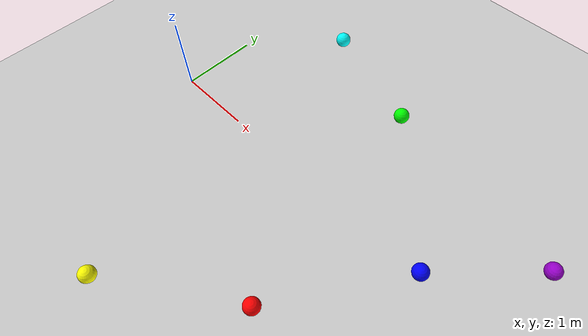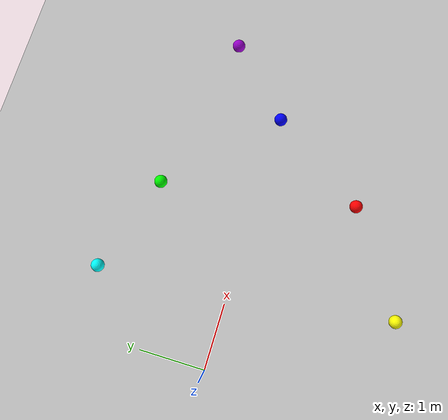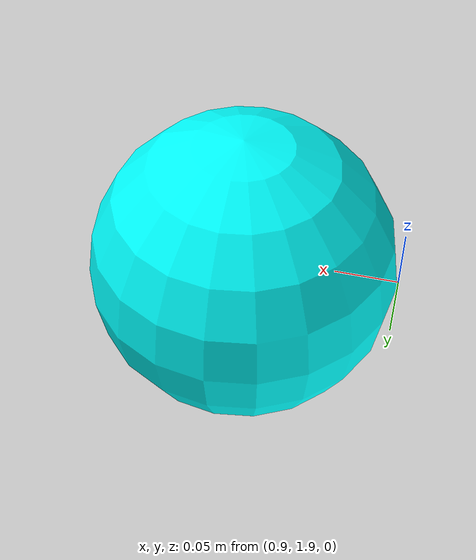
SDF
<sdf version="1.8">
 <world name="my_world">
  <plugin filename="gz-sim-physics-system" name="gz::sim::systems::Physics"/>
  <plugin filename="gz-sim-sensors-system" name="gz::sim::systems::Sensors">
   <render_engine>ogre2</render_engine>
  </plugin>
  <plugin filename="gz-sim-scene-broadcaster-system" name="gz::sim::systems::SceneBroadcaster"/>
  <plugin filename="gz-sim-user-commands-system" name="gz::sim::systems::UserCommands"/>
  <plugin filename="gz-sim-imu-system" name="gz::sim::systems::Imu"/>
  <light name="sun2" type="directional">
   <pose>0 0 10 0 0 0</pose>
   <diffuse>0.8 0.8 0.8 1</diffuse>
   <specular>0.2 0.2 0.2 1</specular>
   <attenuation>
    <range>1000</range>
    <constant>0.9</constant>
    <linear>0.01</linear>
    <quadratic>0.001</quadratic>
   </attenuation>
   <direction>-0.5 0.1 -0.9</direction>
  </light>
  <model name="ground_plane">
   <static>true</static>
   <link name="link">
    <collision name="collision">
     <geometry><plane><normal>0 0 1</normal><size>100 100</size></plane></geometry>
    </collision>
    <visual name="visual">
     <geometry><plane><normal>0 0 1</normal><size>100 100</size></plane></geometry>
     <material>
      <ambient>0.8 0.8 0.8 1</ambient>
      <diffuse>0.8 0.8 0.8 1</diffuse>
      <specular>0.8 0.8 0.8 1</specular>
     </material>
    </visual>
   </link>
  </model>
  <model name="ball_red">
   <pose>3.0 -1.5 0.1 0 0 0</pose>
   <static>false</static>
   <link name="ball_link">
    <inertial>
     <mass>0.1</mass>
     <inertia><ixx>0.00004</ixx><ixy>0</ixy><ixz>0</ixz><iyy>0.00004</iyy><iyz>0</iyz><izz>0.00004</izz></inertia>
    </inertial>
    <collision name="collision"><geometry><sphere><radius>0.1</radius></sphere></geometry></collision>
    <visual name="visual">
     <geometry><sphere><radius>0.1</radius></sphere></geometry>
     <material>
      <ambient>1.0 0.0 0.0 1</ambient>
      <diffuse>1.0 0.0 0.0 1</diffuse>
      <specular>0.5 0.5 0.5 1</specular>
      <emissive>0.1 0.0 0.0 1</emissive>
     </material>
    </visual>
   </link>
  </model>
  <model name="ball_green">
   <pose>2.5 1.5 0.1 0 0 0</pose>
   <static>false</static>
   <link name="ball_link">
    <inertial>
     <mass>0.1</mass>
     <inertia><ixx>0.00004</ixx><ixy>0</ixy><ixz>0</ixz><iyy>0.00004</iyy><iyz>0</iyz><izz>0.00004</izz></inertia>
    </inertial>
    <collision name="collision"><geometry><sphere><radius>0.1</radius></sphere></geometry></collision>
    <visual name="visual">
     <geometry><sphere><radius>0.1</radius></sphere></geometry>
     <material>
      <ambient>0.0 1.0 0.0 1</ambient>
      <diffuse>0.0 1.0 0.0 1</diffuse>
      <specular>0.5 0.5 0.5 1</specular>
      <emissive>0.0 0.1 0.0 1</emissive>
     </material>
    </visual>
   </link>
  </model>
  <model name="ball_blue">
   <pose>4.0 0.0 0.1 0 0 0</pose>
   <static>false</static>
   <link name="ball_link">
    <inertial>
     <mass>0.1</mass>
     <inertia><ixx>0.00004</ixx><ixy>0</ixy><ixz>0</ixz><iyy>0.00004</iyy><iyz>0</iyz><izz>0.00004</izz></inertia>
    </inertial>
    <collision name="collision"><geometry><sphere><radius>0.1</radius></sphere></geometry></collision>
    <visual name="visual">
     <geometry><sphere><radius>0.1</radius></sphere></geometry>
     <material>
      <ambient>0.0 0.0 1.0 1</ambient>
      <diffuse>0.0 0.0 1.0 1</diffuse>
      <specular>0.5 0.5 0.5 1</specular>
      <emissive>0.0 0.0 0.1 1</emissive>
     </material>
    </visual>
   </link>
  </model>
  <model name="ball_yellow">
   <pose>1.5 -2.5 0.1 0 0 0</pose>
   <static>false</static>
   <link name="ball_link">
    <inertial>
     <mass>0.1</mass>
     <inertia><ixx>0.00004</ixx><ixy>0</ixy><ixz>0</ixz><iyy>0.00004</iyy><iyz>0</iyz><izz>0.00004</izz></inertia>
    </inertial>
    <collision name="collision"><geometry><sphere><radius>0.1</radius></sphere></geometry></collision>
    <visual name="visual">
     <geometry><sphere><radius>0.1</radius></sphere></geometry>
     <material>
      <ambient>1.0 1.0 0.0 1</ambient>
      <diffuse>1.0 1.0 0.0 1</diffuse>
      <specular>0.5 0.5 0.5 1</specular>
      <emissive>0.1 0.1 0.0 1</emissive>
     </material>
    </visual>
   </link>
  </model>
  <model name="ball_cyan">
   <pose>1.0 2.0 0.1 0 0 0</pose>
   <static>false</static>
   <link name="ball_link">
    <inertial>
     <mass>0.1</mass>
     <inertia><ixx>0.00004</ixx><ixy>0</ixy><ixz>0</ixz><iyy>0.00004</iyy><iyz>0</iyz><izz>0.00004</izz></inertia>
    </inertial>
    <collision name="collision"><geometry><sphere><radius>0.1</radius></sphere></geometry></collision>
    <visual name="visual">
     <geometry><sphere><radius>0.1</radius></sphere></geometry>
     <material>
      <ambient>0.0 1.0 1.0 1</ambient>
      <diffuse>0.0 1.0 1.0 1</diffuse>
      <specular>0.5 0.5 0.5 1</specular>
      <emissive>0.0 0.1 0.1 1</emissive>
     </material>
    </visual>
   </link>
  </model>
  <model name="ball_purple">
   <pose>5.0 1.0 0.1 0 0 0</pose>
   <static>false</static>
   <link name="ball_link">
    <inertial>
     <mass>0.1</mass>
     <inertia><ixx>0.00004</ixx><ixy>0</ixy><ixz>0</ixz><iyy>0.00004</iyy><iyz>0</iyz><izz>0.00004</izz></inertia>
    </inertial>
    <collision name="collision"><geometry><sphere><radius>0.1</radius></sphere></geometry></collision>
    <visual name="visual">
     <geometry><sphere><radius>0.1</radius></sphere></geometry>
     <material>
      <ambient>0.6 0.0 0.8 1</ambient>
      <diffuse>0.6 0.0 0.8 1</diffuse>
      <specular>0.5 0.5 0.5 1</specular>
      <emissive>0.06 0.0 0.08 1</emissive>
     </material>
    </visual>
   </link>
  </model>
 </world>
</sdf>
